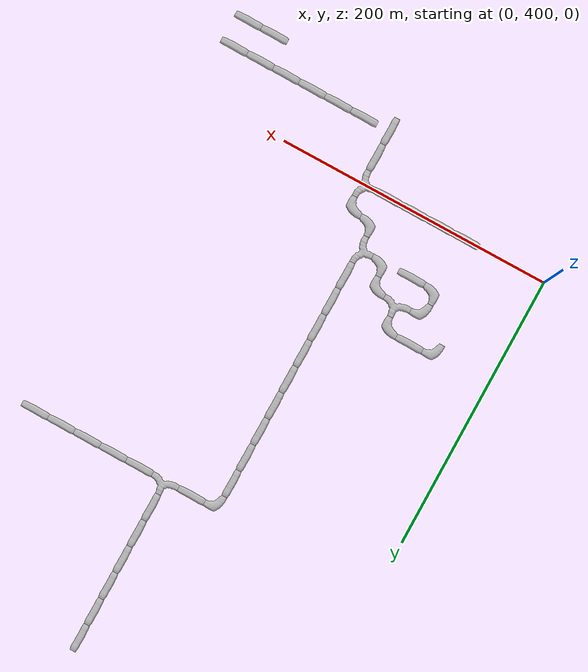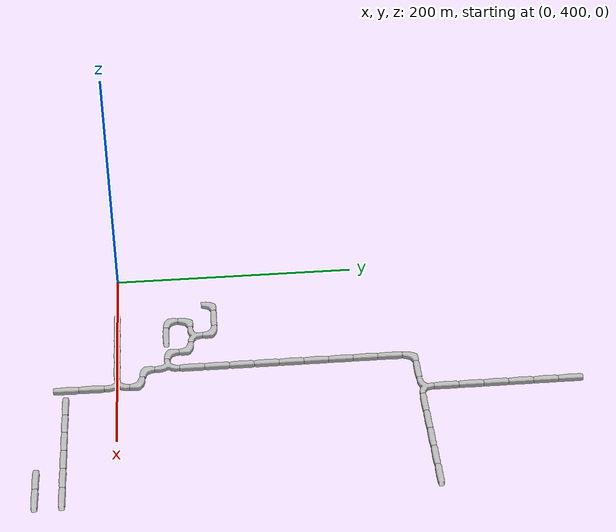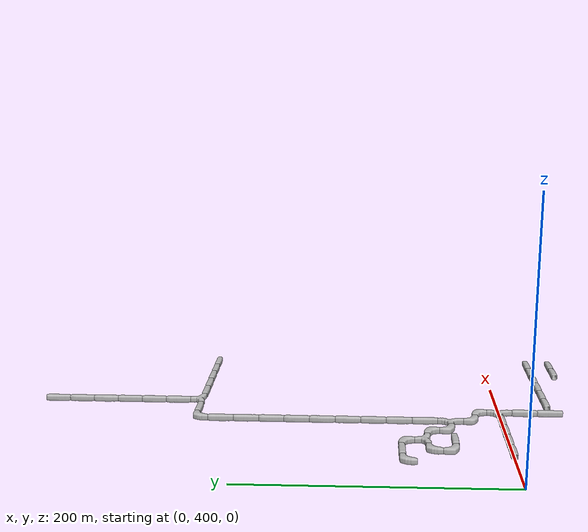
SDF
<sdf version="1.6">
 <world name="cave_16000_32">
  <include>
   <static>true</static>
   <name>cave_3_20</name>
   <pose>60 400 0 0 0 1.5707963267948966</pose>
   <uri>model://cave_straight_20m</uri>
  </include>
  <include>
   <static>true</static>
   <name>cave_4_20</name>
   <pose>80 400 0 0 0 1.5707963267948966</pose>
   <uri>model://cave_straight_20m</uri>
  </include>
  <include>
   <static>true</static>
   <name>cave_5_20</name>
   <pose>100 400 0 0 0 1.5707963267948966</pose>
   <uri>model://cave_straight_20m</uri>
  </include>
  <include>
   <static>true</static>
   <name>cave_6_20</name>
   <pose>120 400 0 0 0 1.5707963267948966</pose>
   <uri>model://cave_straight_20m</uri>
  </include>
  <include>
   <static>true</static>
   <name>cave_7_20</name>
   <pose>140 400 0 0 0 1.5707963267948966</pose>
   <uri>model://cave_3way_20m</uri>
  </include>
  <include>
   <static>true</static>
   <name>cave_7_19</name>
   <pose>140 380 0 0 0 0.0</pose>
   <uri>model://cave_straight_20m</uri>
  </include>
  <include>
   <static>true</static>
   <name>cave_7_18</name>
   <pose>140 360 0 0 0 0.0</pose>
   <uri>model://cave_straight_20m</uri>
  </include>
  <include>
   <static>true</static>
   <name>cave_12_17</name>
   <pose>240 340 0 0 0 1.5707963267948966</pose>
   <uri>model://cave_straight_20m</uri>
  </include>
  <include>
   <static>true</static>
   <name>cave_13_17</name>
   <pose>260 340 0 0 0 1.5707963267948966</pose>
   <uri>model://cave_straight_20m</uri>
  </include>
  <include>
   <static>true</static>
   <name>cave_13_18</name>
   <pose>260 360 0 0 0 1.5707963267948966</pose>
   <uri>model://cave_straight_20m</uri>
  </include>
  <include>
   <static>true</static>
   <name>cave_12_18</name>
   <pose>240 360 0 0 0 1.5707963267948966</pose>
   <uri>model://cave_straight_20m</uri>
  </include>
  <include>
   <static>true</static>
   <name>cave_11_18</name>
   <pose>220 360 0 0 0 1.5707963267948966</pose>
   <uri>model://cave_straight_20m</uri>
  </include>
  <include>
   <static>true</static>
   <name>cave_10_18</name>
   <pose>200 360 0 0 0 1.5707963267948966</pose>
   <uri>model://cave_straight_20m</uri>
  </include>
  <include>
   <static>true</static>
   <name>cave_9_18</name>
   <pose>180 360 0 0 0 1.5707963267948966</pose>
   <uri>model://cave_straight_20m</uri>
  </include>
  <include>
   <static>true</static>
   <name>cave_8_18</name>
   <pose>160 360 0 0 0 1.5707963267948966</pose>
   <uri>model://cave_straight_20m</uri>
  </include>
  <include>
   <static>true</static>
   <name>cave_7_21</name>
   <pose>140 420 0 0 0 3.141592653589793</pose>
   <uri>model://cave_L_20m</uri>
  </include>
  <include>
   <static>true</static>
   <name>cave_6_21</name>
   <pose>120 420 0 0 0 0.0</pose>
   <uri>model://cave_L_20m</uri>
  </include>
  <include>
   <static>true</static>
   <name>cave_6_22</name>
   <pose>120 440 0 0 0 1.5707963267948966</pose>
   <uri>model://cave_3way_20m</uri>
  </include>
  <include>
   <static>true</static>
   <name>cave_5_22</name>
   <pose>100 440 0 0 0 0.0</pose>
   <uri>model://cave_L_20m</uri>
  </include>
  <include>
   <static>true</static>
   <name>cave_5_23</name>
   <pose>100 460 0 0 0 3.141592653589793</pose>
   <uri>model://cave_L_20m</uri>
  </include>
  <include>
   <static>true</static>
   <name>cave_4_23</name>
   <pose>80 460 0 0 0 0.0</pose>
   <uri>model://cave_3way_20m</uri>
  </include>
  <include>
   <static>true</static>
   <name>cave_3_23</name>
   <pose>60 460 0 0 0 -1.5707963267948966</pose>
   <uri>model://cave_L_20m</uri>
  </include>
  <include>
   <static>true</static>
   <name>cave_3_22</name>
   <pose>60 440 0 0 0 0.0</pose>
   <uri>model://cave_L_20m</uri>
  </include>
  <include>
   <static>true</static>
   <name>cave_4_22</name>
   <pose>80 440 0 0 0 1.5707963267948966</pose>
   <uri>model://cave_straight_20m</uri>
  </include>
  <include>
   <static>true</static>
   <name>cave_4_24</name>
   <pose>80 480 0 0 0 3.141592653589793</pose>
   <uri>model://cave_L_20m</uri>
  </include>
  <include>
   <static>true</static>
   <name>cave_3_24</name>
   <pose>60 480 0 0 0 1.5707963267948966</pose>
   <uri>model://cave_straight_20m</uri>
  </include>
  <include>
   <static>true</static>
   <name>cave_2_24</name>
   <pose>40 480 0 0 0 -1.5707963267948966</pose>
   <uri>model://cave_L_20m</uri>
  </include>
  <include>
   <static>true</static>
   <name>cave_6_23</name>
   <pose>120 460 0 0 0 0.0</pose>
   <uri>model://cave_straight_20m</uri>
  </include>
  <include>
   <static>true</static>
   <name>cave_6_24</name>
   <pose>120 480 0 0 0 0.0</pose>
   <uri>model://cave_straight_20m</uri>
  </include>
  <include>
   <static>true</static>
   <name>cave_6_25</name>
   <pose>120 500 0 0 0 0.0</pose>
   <uri>model://cave_straight_20m</uri>
  </include>
  <include>
   <static>true</static>
   <name>cave_6_26</name>
   <pose>120 520 0 0 0 0.0</pose>
   <uri>model://cave_straight_20m</uri>
  </include>
  <include>
   <static>true</static>
   <name>cave_6_27</name>
   <pose>120 540 0 0 0 0.0</pose>
   <uri>model://cave_straight_20m</uri>
  </include>
  <include>
   <static>true</static>
   <name>cave_6_28</name>
   <pose>120 560 0 0 0 0.0</pose>
   <uri>model://cave_straight_20m</uri>
  </include>
  <include>
   <static>true</static>
   <name>cave_6_29</name>
   <pose>120 580 0 0 0 0.0</pose>
   <uri>model://cave_straight_20m</uri>
  </include>
  <include>
   <static>true</static>
   <name>cave_6_30</name>
   <pose>120 600 0 0 0 0.0</pose>
   <uri>model://cave_straight_20m</uri>
  </include>
  <include>
   <static>true</static>
   <name>cave_6_31</name>
   <pose>120 620 0 0 0 0.0</pose>
   <uri>model://cave_straight_20m</uri>
  </include>
  <include>
   <static>true</static>
   <name>cave_6_32</name>
   <pose>120 640 0 0 0 -1.5707963267948966</pose>
   <uri>model://cave_L_20m</uri>
  </include>
  <include>
   <static>true</static>
   <name>cave_7_32</name>
   <pose>140 640 0 0 0 1.5707963267948966</pose>
   <uri>model://cave_straight_20m</uri>
  </include>
  <include>
   <static>true</static>
   <name>cave_8_32</name>
   <pose>160 640 0 0 0 0.0</pose>
   <uri>model://cave_3way_20m</uri>
  </include>
  <include>
   <static>true</static>
   <name>cave_9_32</name>
   <pose>180 640 0 0 0 1.5707963267948966</pose>
   <uri>model://cave_straight_20m</uri>
  </include>
  <include>
   <static>true</static>
   <name>cave_10_32</name>
   <pose>200 640 0 0 0 1.5707963267948966</pose>
   <uri>model://cave_straight_20m</uri>
  </include>
  <include>
   <static>true</static>
   <name>cave_11_32</name>
   <pose>220 640 0 0 0 1.5707963267948966</pose>
   <uri>model://cave_straight_20m</uri>
  </include>
  <include>
   <static>true</static>
   <name>cave_12_32</name>
   <pose>240 640 0 0 0 1.5707963267948966</pose>
   <uri>model://cave_straight_20m</uri>
  </include>
  <include>
   <static>true</static>
   <name>cave_13_32</name>
   <pose>260 640 0 0 0 1.5707963267948966</pose>
   <uri>model://cave_straight_20m</uri>
  </include>
  <include>
   <static>true</static>
   <name>cave_8_33</name>
   <pose>160 660 0 0 0 0.0</pose>
   <uri>model://cave_straight_20m</uri>
  </include>
  <include>
   <static>true</static>
   <name>cave_8_34</name>
   <pose>160 680 0 0 0 0.0</pose>
   <uri>model://cave_straight_20m</uri>
  </include>
  <include>
   <static>true</static>
   <name>cave_8_35</name>
   <pose>160 700 0 0 0 0.0</pose>
   <uri>model://cave_straight_20m</uri>
  </include>
  <include>
   <static>true</static>
   <name>cave_8_36</name>
   <pose>160 720 0 0 0 0.0</pose>
   <uri>model://cave_straight_20m</uri>
  </include>
  <include>
   <static>true</static>
   <name>cave_8_37</name>
   <pose>160 740 0 0 0 0.0</pose>
   <uri>model://cave_straight_20m</uri>
  </include>
  <include>
   <static>true</static>
   <name>cave_8_38</name>
   <pose>160 760 0 0 0 0.0</pose>
   <uri>model://cave_straight_20m</uri>
  </include>
 </world>
</sdf>
